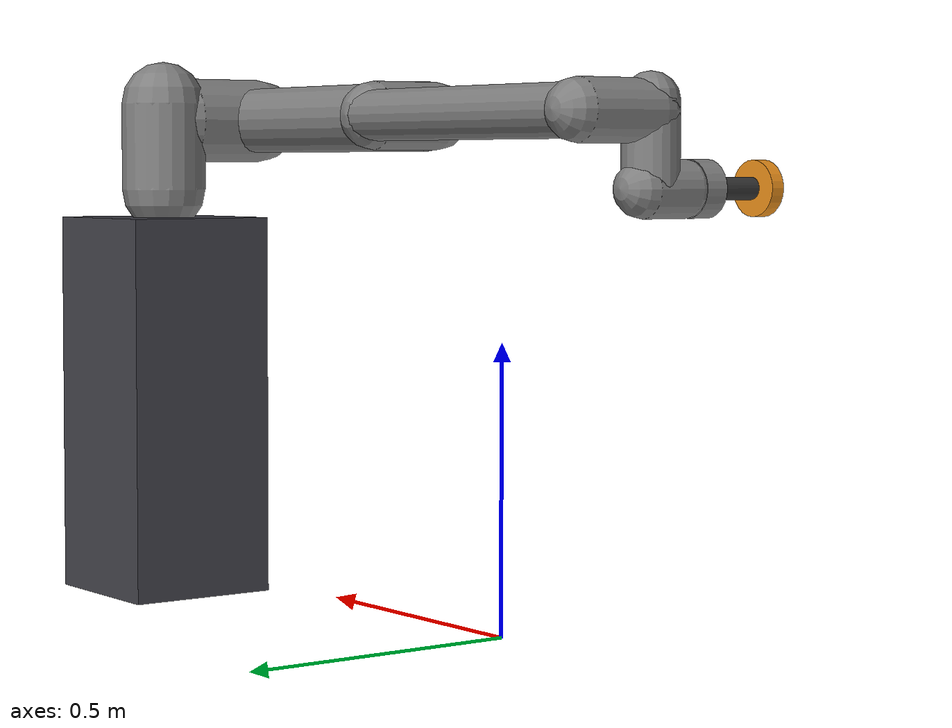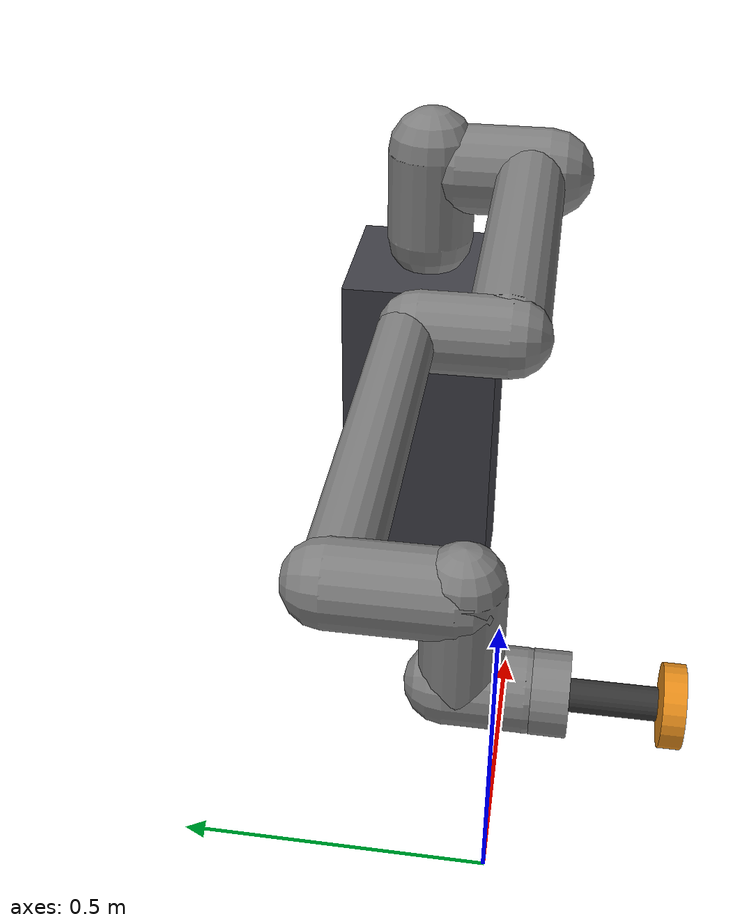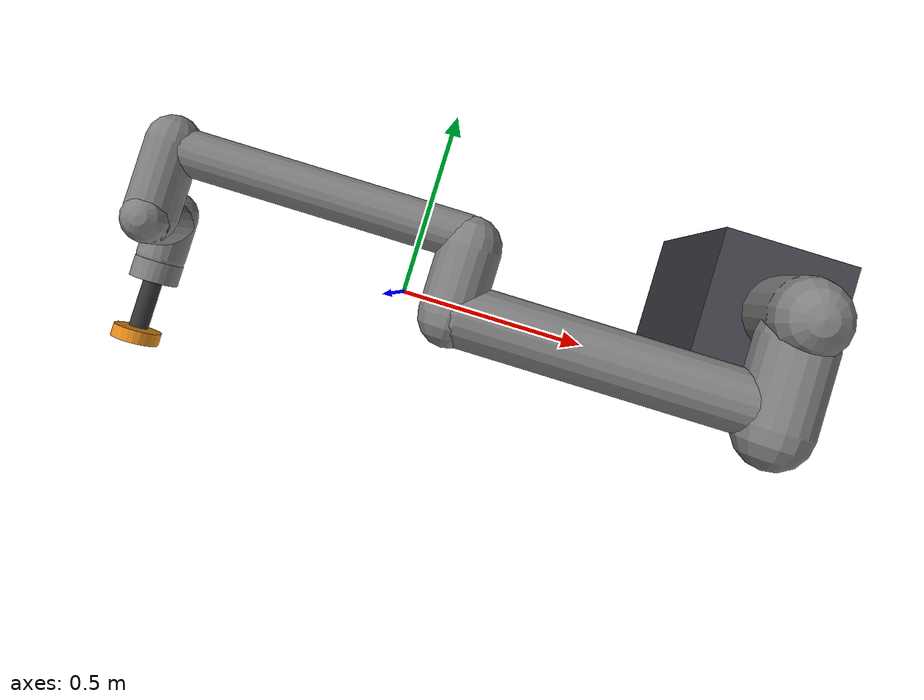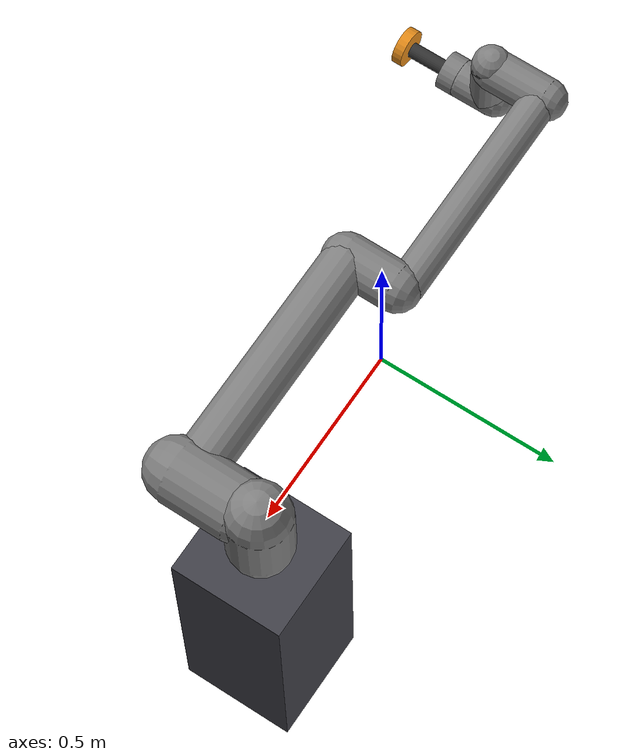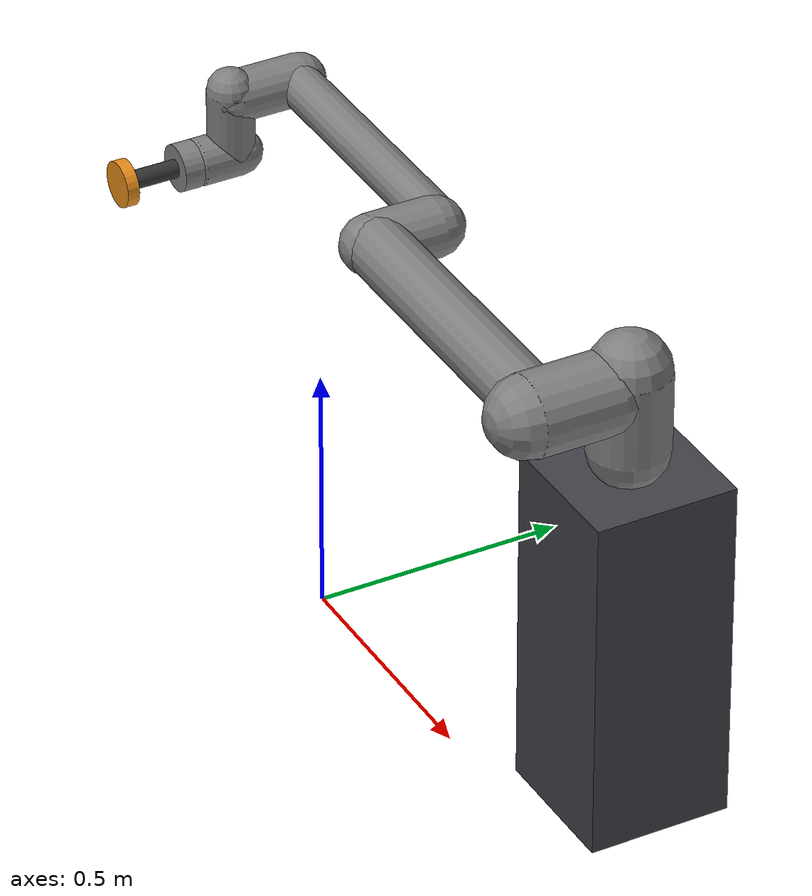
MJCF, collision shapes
<mujoco model="ur10e_cell">
  <default>
    <default class="ur10e">
      <material specular="0.5" shininess="0.25"/>
      <joint axis="0 1 0" range="-6.28319 6.28319" armature="0.1"/>
      <position ctrlrange="-6.2831 6.2831"/>
      <general biastype="affine" ctrlrange="-6.2831 6.2831" gainprm="5000" biasprm="0 -5000 -500"/>
      <default class="size4">
        <joint damping="10"/>
        <general forcerange="-330 330"/>
      </default>
      <default class="size3">
        <joint damping="5"/>
        <general forcerange="-150 150"/>
        <default class="size3_limited">
          <joint range="-3.1415 3.1415"/>
          <general ctrlrange="-3.1415 3.1415"/>
        </default>
      </default>
      <default class="size2">
        <joint damping="2"/>
        <general forcerange="-56 56"/>
      </default>
      <default class="visual">
        <geom type="mesh" contype="0" conaffinity="0" group="2"/>
      </default>
      <default class="collision">
        <geom type="capsule" group="3"/>
        <default class="eef_collision">
          <geom type="cylinder"/>
        </default>
      </default>
      <site size="0.001" rgba="0.5 0.5 0.5 0.3" group="4"/>
    </default>
  </default>

  <asset>
    <material class="ur10e" name="black" rgba="0.033 0.033 0.033 1"/>
    <material class="ur10e" name="jointgray" rgba="0.278 0.278 0.278 1"/>
    <material class="ur10e" name="linkgray" rgba="0.82 0.82 0.82 1"/>
    <material class="ur10e" name="urblue" rgba="0.49 0.678 0.8 1"/>

    <mesh file="ur10e/assets/base_0.obj"/>
    <mesh file="ur10e/assets/base_1.obj"/>
    <mesh file="ur10e/assets/shoulder_0.obj"/>
    <mesh file="ur10e/assets/shoulder_1.obj"/>
    <mesh file="ur10e/assets/shoulder_2.obj"/>
    <mesh file="ur10e/assets/upperarm_0.obj"/>
    <mesh file="ur10e/assets/upperarm_1.obj"/>
    <mesh file="ur10e/assets/upperarm_2.obj"/>
    <mesh file="ur10e/assets/upperarm_3.obj"/>
    <mesh file="ur10e/assets/forearm_0.obj"/>
    <mesh file="ur10e/assets/forearm_1.obj"/>
    <mesh file="ur10e/assets/forearm_2.obj"/>
    <mesh file="ur10e/assets/forearm_3.obj"/>
    <mesh file="ur10e/assets/wrist1_0.obj"/>
    <mesh file="ur10e/assets/wrist1_1.obj"/>
    <mesh file="ur10e/assets/wrist1_2.obj"/>
    <mesh file="ur10e/assets/wrist2_0.obj"/>
    <mesh file="ur10e/assets/wrist2_1.obj"/>
    <mesh file="ur10e/assets/wrist2_2.obj"/>
    <mesh file="ur10e/assets/wrist3.obj"/>
  </asset>

  <worldbody>
    <light name="spotlight" mode="targetbodycom" target="wrist_2_link" pos="0.8 -1 3"/>

    <!-- Тумба робота (верх на 0.7 м — уровень ленты) -->
    <body name="robot_pedestal" pos="0.78 0.2 0">
      <geom name="pedestal" type="box" size="0.14 0.14 0.35" pos="0 0 0.35"
            rgba="0.25 0.25 0.28 1"/>
    </body>

    <body name="base" pos="0.78 0.2 0.7" quat="0 0 0 -1" childclass="ur10e">
      <inertial mass="4.0" pos="0 0 0" diaginertia="0.0061063308908 0.0061063308908 0.01125"/>
      <geom mesh="base_0" material="black" class="visual"/>
      <geom mesh="base_1" material="jointgray" class="visual"/>
      <body name="shoulder_link" pos="0 0 0.181">
        <inertial pos="0 0 0" mass="7.778" diaginertia="0.0314743 0.0314743 0.0218756"/>
        <joint name="shoulder_pan_joint" class="size4" axis="0 0 1"/>
        <geom mesh="shoulder_0" material="urblue" class="visual"/>
        <geom mesh="shoulder_1" material="black" class="visual"/>
        <geom mesh="shoulder_2" material="jointgray" class="visual"/>
        <geom class="collision" size="0.078 0.08" pos="0 0 -0.05"/>
        <body name="upper_arm_link" pos="0 0.176 0" quat="1 0 1 0">
          <inertial pos="0 0 0.3065" mass="12.93" diaginertia="0.423074 0.423074 0.0363656"/>
          <joint name="shoulder_lift_joint" class="size4"/>
          <geom mesh="upperarm_0" material="black" class="visual"/>
          <geom mesh="upperarm_1" material="jointgray" class="visual"/>
          <geom mesh="upperarm_2" material="urblue" class="visual"/>
          <geom mesh="upperarm_3" material="linkgray" class="visual"/>
          <geom class="collision" pos="0 -0.05 0" quat="1 1 0 0" size="0.078 0.08"/>
          <geom class="collision" size="0.06 0.3" pos="0 0 0.3"/>
          <body name="forearm_link" pos="0 -0.137 0.613">
            <inertial pos="0 0 0.2855" mass="3.87" diaginertia="0.11059 0.11059 0.0108844"/>
            <joint name="elbow_joint" class="size3_limited"/>
            <geom mesh="forearm_0" material="urblue" class="visual"/>
            <geom mesh="forearm_1" material="black" class="visual"/>
            <geom mesh="forearm_2" material="jointgray" class="visual"/>
            <geom mesh="forearm_3" material="linkgray" class="visual"/>
            <geom class="collision" pos="0 0.08 0" quat="1 1 0 0" size="0.058 0.065"/>
            <geom class="collision" size="0.043 0.28" pos="0 0 0.29"/>
            <body name="wrist_1_link" pos="0 0 0.571" quat="1 0 1 0">
              <inertial pos="0 0.135 0" quat="0.5 0.5 -0.5 0.5" mass="1.96"
                diaginertia="0.0055125 0.00510825 0.00510825"/>
              <joint name="wrist_1_joint" class="size2"/>
              <geom mesh="wrist1_0" material="black" class="visual"/>
              <geom mesh="wrist1_1" material="urblue" class="visual"/>
              <geom mesh="wrist1_2" material="jointgray" class="visual"/>
              <geom class="collision" pos="0 0.06 0" quat="1 1 0 0" size="0.05 0.07"/>
              <body name="wrist_2_link" pos="0 0.135 0">
                <inertial pos="0 0 0.12" quat="0.5 0.5 -0.5 0.5" mass="1.96"
                  diaginertia="0.0055125 0.00510825 0.00510825"/>
                <joint name="wrist_2_joint" axis="0 0 1" class="size2"/>
                <geom mesh="wrist2_0" material="black" class="visual"/>
                <geom mesh="wrist2_1" material="urblue" class="visual"/>
                <geom mesh="wrist2_2" material="jointgray" class="visual"/>
                <geom class="collision" size="0.046 0.065" pos="0 0 0.05"/>
                <geom class="collision" pos="0 0.028 0.12" quat="1 1 0 0" size="0.046 0.043"/>
                <body name="wrist_3_link" pos="0 0 0.12">
                  <inertial pos="0 0.092 0" quat="0 1 -1 0" mass="0.202"
                    diaginertia="0.000204525 0.000144346 0.000144346"/>
                  <joint name="wrist_3_joint" class="size2"/>
                  <geom material="linkgray" mesh="wrist3" class="visual"/>
                  <geom class="eef_collision" pos="0 0.097 0" quat="1 1 0 0" size="0.046 0.02"/>
                  <site name="attachment_site" pos="0 0.1 0" quat="-1 1 0 0"/>

                  <!-- Вакуумный захват -->
                  <body name="suction_mount" pos="0 0.1 0" quat="-1 1 0 0">
                    <geom name="suction_stick" type="cylinder" size="0.018 0.055"
                          pos="0 0 0.055" rgba="0.2 0.2 0.2 1" mass="0.25"/>
                    <body name="suction_cup" pos="0 0 0.125">
                      <!-- margin/gap создают "бесконтактную" зону захвата: вакуум
                           притягивает товар с ~2.5 см, не продавливая его -->
                      <geom name="suction_pad" type="cylinder" size="0.045 0.012"
                            rgba="0.9 0.55 0.1 1" mass="0.15"
                            friction="1.2 0.02 0.005"
                            solref="0.008 1" margin="0.025" gap="0.025"/>
                      <site name="suction_tip" type="cylinder" size="0.046 0.018"
                            pos="0 0 0.008" rgba="1 0.4 0 0.4"/>
                      <!-- Камера «глаз в руке» (POV манипулятора): отведена по +X
                           от присоски и смотрит вниз на товар под захватом -->
                      <camera name="cam_wrist" pos="0.11 0 -0.02"
                              quat="0 0.2588 0.9659 0" fovy="74"/>
                    </body>
                  </body>
                </body>
              </body>
            </body>
          </body>
        </body>
      </body>
    </body>
  </worldbody>

  <actuator>
    <general class="size4" name="shoulder_pan" joint="shoulder_pan_joint"/>
    <general class="size4" name="shoulder_lift" joint="shoulder_lift_joint"/>
    <general class="size3_limited" name="elbow" joint="elbow_joint"/>
    <general class="size2" name="wrist_1" joint="wrist_1_joint"/>
    <general class="size2" name="wrist_2" joint="wrist_2_joint"/>
    <general class="size2" name="wrist_3" joint="wrist_3_joint"/>
    <!-- Вакуум: ctrl 0..1, сила прилипания = gain * ctrl (Н) на контактах присоски -->
    <adhesion name="suction" body="suction_cup" ctrlrange="0 1" gain="500"/>
  </actuator>

  <sensor>
    <framepos name="ee_pos" objtype="site" objname="suction_tip"/>
    <framequat name="ee_quat" objtype="site" objname="suction_tip"/>
    <framelinvel name="ee_vel" objtype="site" objname="suction_tip"/>
    <touch name="suction_touch" site="suction_tip"/>
  </sensor>
</mujoco>
